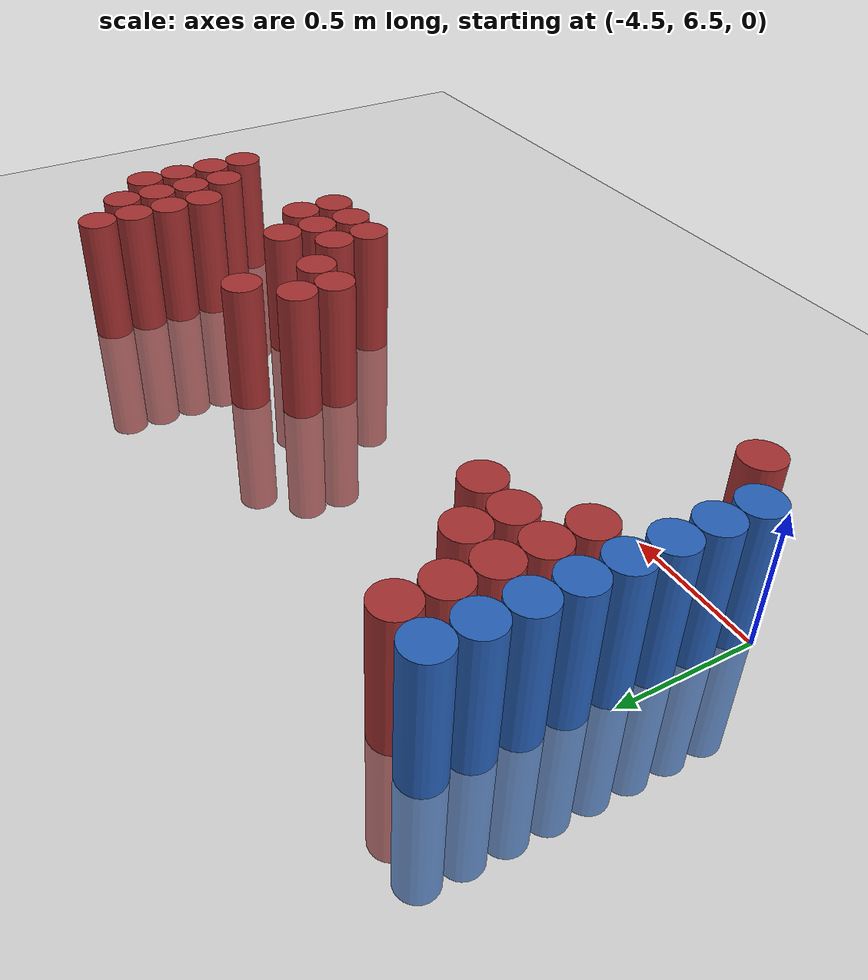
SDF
<sdf version="1.6">
 <world name="default">
  <model name="ground_plane">
   <static>1</static>
   <link name="link">
    <collision name="collision">
     <geometry><plane><normal>0 0 1</normal><size>100 100</size></plane></geometry>
     <surface><friction><ode><mu>100</mu><mu2>50</mu2></ode></friction></surface>
    </collision>
    <visual name="visual">
     <cast_shadows>0</cast_shadows>
     <geometry><plane><normal>0 0 1</normal><size>100 100</size></plane></geometry>
     <material>
      <script><uri>file://media/materials/scripts/gazebo.material</uri><name>Gazebo/Grey</name></script>
     </material>
    </visual>
   </link>
  </model>
  <model name="unit_cylinder_105">
   <static>1</static>
   <pose>-4.425000 6.525000 0.000000 0.000000 0.000000 0.000000</pose>
   <link name="link">
    <inertial>
     <mass>1</mass>
     <inertia><ixx>0.145833</ixx><ixy>0</ixy><ixz>0</ixz><iyy>0.145833</iyy><iyz>0</iyz><izz>0.125</izz></inertia>
    </inertial>
    <collision name="collision">
     <geometry><cylinder><radius>0.075000</radius><length>1</length></cylinder></geometry>
    </collision>
    <visual name="visual">
     <geometry><cylinder><radius>0.075000</radius><length>1</length></cylinder></geometry>
     <material>
      <ambient>0.152000 0.379000 0.720000 1</ambient>
      <diffuse>0.152000 0.379000 0.720000 1</diffuse>
     </material>
     <material>
      <script><name>Gazebo/Grey</name><uri>file://media/materials/scripts/gazebo.material</uri></script>
     </material>
    </visual>
    <sensor name="sensor_contact" type="contact"><contact><collision>collision</collision></contact></sensor>
   </link>
   <plugin filename="gz-sim-touchplugin-system" name="gz::sim::systems::TouchPlugin">
    <target>robot</target>
    <namespace>robot</namespace>
    <time>0.001</time>
    <enabled>true</enabled>
   </plugin>
  </model>
  <model name="unit_cylinder_106">
   <static>1</static>
   <pose>-4.425000 6.675000 0.000000 0.000000 0.000000 0.000000</pose>
   <link name="link">
    <inertial>
     <mass>1</mass>
     <inertia><ixx>0.145833</ixx><ixy>0</ixy><ixz>0</ixz><iyy>0.145833</iyy><iyz>0</iyz><izz>0.125</izz></inertia>
    </inertial>
    <collision name="collision">
     <geometry><cylinder><radius>0.075000</radius><length>1</length></cylinder></geometry>
    </collision>
    <visual name="visual">
     <geometry><cylinder><radius>0.075000</radius><length>1</length></cylinder></geometry>
     <material>
      <ambient>0.152000 0.379000 0.720000 1</ambient>
      <diffuse>0.152000 0.379000 0.720000 1</diffuse>
     </material>
     <material>
      <script><name>Gazebo/Grey</name><uri>file://media/materials/scripts/gazebo.material</uri></script>
     </material>
    </visual>
    <sensor name="sensor_contact" type="contact"><contact><collision>collision</collision></contact></sensor>
   </link>
   <plugin filename="gz-sim-touchplugin-system" name="gz::sim::systems::TouchPlugin">
    <target>robot</target>
    <namespace>robot</namespace>
    <time>0.001</time>
    <enabled>true</enabled>
   </plugin>
  </model>
  <model name="unit_cylinder_107">
   <static>1</static>
   <pose>-4.425000 6.825000 0.000000 0.000000 0.000000 0.000000</pose>
   <link name="link">
    <inertial>
     <mass>1</mass>
     <inertia><ixx>0.145833</ixx><ixy>0</ixy><ixz>0</ixz><iyy>0.145833</iyy><iyz>0</iyz><izz>0.125</izz></inertia>
    </inertial>
    <collision name="collision">
     <geometry><cylinder><radius>0.075000</radius><length>1</length></cylinder></geometry>
    </collision>
    <visual name="visual">
     <geometry><cylinder><radius>0.075000</radius><length>1</length></cylinder></geometry>
     <material>
      <ambient>0.152000 0.379000 0.720000 1</ambient>
      <diffuse>0.152000 0.379000 0.720000 1</diffuse>
     </material>
     <material>
      <script><name>Gazebo/Grey</name><uri>file://media/materials/scripts/gazebo.material</uri></script>
     </material>
    </visual>
    <sensor name="sensor_contact" type="contact"><contact><collision>collision</collision></contact></sensor>
   </link>
   <plugin filename="gz-sim-touchplugin-system" name="gz::sim::systems::TouchPlugin">
    <target>robot</target>
    <namespace>robot</namespace>
    <time>0.001</time>
    <enabled>true</enabled>
   </plugin>
  </model>
  <model name="unit_cylinder_108">
   <static>1</static>
   <pose>-4.425000 6.975000 0.000000 0.000000 0.000000 0.000000</pose>
   <link name="link">
    <inertial>
     <mass>1</mass>
     <inertia><ixx>0.145833</ixx><ixy>0</ixy><ixz>0</ixz><iyy>0.145833</iyy><iyz>0</iyz><izz>0.125</izz></inertia>
    </inertial>
    <collision name="collision">
     <geometry><cylinder><radius>0.075000</radius><length>1</length></cylinder></geometry>
    </collision>
    <visual name="visual">
     <geometry><cylinder><radius>0.075000</radius><length>1</length></cylinder></geometry>
     <material>
      <ambient>0.152000 0.379000 0.720000 1</ambient>
      <diffuse>0.152000 0.379000 0.720000 1</diffuse>
     </material>
     <material>
      <script><name>Gazebo/Grey</name><uri>file://media/materials/scripts/gazebo.material</uri></script>
     </material>
    </visual>
    <sensor name="sensor_contact" type="contact"><contact><collision>collision</collision></contact></sensor>
   </link>
   <plugin filename="gz-sim-touchplugin-system" name="gz::sim::systems::TouchPlugin">
    <target>robot</target>
    <namespace>robot</namespace>
    <time>0.001</time>
    <enabled>true</enabled>
   </plugin>
  </model>
  <model name="unit_cylinder_109">
   <static>1</static>
   <pose>-4.425000 7.125000 0.000000 0.000000 0.000000 0.000000</pose>
   <link name="link">
    <inertial>
     <mass>1</mass>
     <inertia><ixx>0.145833</ixx><ixy>0</ixy><ixz>0</ixz><iyy>0.145833</iyy><iyz>0</iyz><izz>0.125</izz></inertia>
    </inertial>
    <collision name="collision">
     <geometry><cylinder><radius>0.075000</radius><length>1</length></cylinder></geometry>
    </collision>
    <visual name="visual">
     <geometry><cylinder><radius>0.075000</radius><length>1</length></cylinder></geometry>
     <material>
      <ambient>0.152000 0.379000 0.720000 1</ambient>
      <diffuse>0.152000 0.379000 0.720000 1</diffuse>
     </material>
     <material>
      <script><name>Gazebo/Grey</name><uri>file://media/materials/scripts/gazebo.material</uri></script>
     </material>
    </visual>
    <sensor name="sensor_contact" type="contact"><contact><collision>collision</collision></contact></sensor>
   </link>
   <plugin filename="gz-sim-touchplugin-system" name="gz::sim::systems::TouchPlugin">
    <target>robot</target>
    <namespace>robot</namespace>
    <time>0.001</time>
    <enabled>true</enabled>
   </plugin>
  </model>
  <model name="unit_cylinder_110">
   <static>1</static>
   <pose>-4.425000 7.275000 0.000000 0.000000 0.000000 0.000000</pose>
   <link name="link">
    <inertial>
     <mass>1</mass>
     <inertia><ixx>0.145833</ixx><ixy>0</ixy><ixz>0</ixz><iyy>0.145833</iyy><iyz>0</iyz><izz>0.125</izz></inertia>
    </inertial>
    <collision name="collision">
     <geometry><cylinder><radius>0.075000</radius><length>1</length></cylinder></geometry>
    </collision>
    <visual name="visual">
     <geometry><cylinder><radius>0.075000</radius><length>1</length></cylinder></geometry>
     <material>
      <ambient>0.152000 0.379000 0.720000 1</ambient>
      <diffuse>0.152000 0.379000 0.720000 1</diffuse>
     </material>
     <material>
      <script><name>Gazebo/Grey</name><uri>file://media/materials/scripts/gazebo.material</uri></script>
     </material>
    </visual>
    <sensor name="sensor_contact" type="contact"><contact><collision>collision</collision></contact></sensor>
   </link>
   <plugin filename="gz-sim-touchplugin-system" name="gz::sim::systems::TouchPlugin">
    <target>robot</target>
    <namespace>robot</namespace>
    <time>0.001</time>
    <enabled>true</enabled>
   </plugin>
  </model>
  <model name="unit_cylinder_111">
   <static>1</static>
   <pose>-4.425000 7.425000 0.000000 0.000000 0.000000 0.000000</pose>
   <link name="link">
    <inertial>
     <mass>1</mass>
     <inertia><ixx>0.145833</ixx><ixy>0</ixy><ixz>0</ixz><iyy>0.145833</iyy><iyz>0</iyz><izz>0.125</izz></inertia>
    </inertial>
    <collision name="collision">
     <geometry><cylinder><radius>0.075000</radius><length>1</length></cylinder></geometry>
    </collision>
    <visual name="visual">
     <geometry><cylinder><radius>0.075000</radius><length>1</length></cylinder></geometry>
     <material>
      <ambient>0.152000 0.379000 0.720000 1</ambient>
      <diffuse>0.152000 0.379000 0.720000 1</diffuse>
     </material>
     <material>
      <script><name>Gazebo/Grey</name><uri>file://media/materials/scripts/gazebo.material</uri></script>
     </material>
    </visual>
    <sensor name="sensor_contact" type="contact"><contact><collision>collision</collision></contact></sensor>
   </link>
   <plugin filename="gz-sim-touchplugin-system" name="gz::sim::systems::TouchPlugin">
    <target>robot</target>
    <namespace>robot</namespace>
    <time>0.001</time>
    <enabled>true</enabled>
   </plugin>
  </model>
  <model name="unit_cylinder_112">
   <static>1</static>
   <pose>-4.425000 7.575000 0.000000 0.000000 0.000000 0.000000</pose>
   <link name="link">
    <inertial>
     <mass>1</mass>
     <inertia><ixx>0.145833</ixx><ixy>0</ixy><ixz>0</ixz><iyy>0.145833</iyy><iyz>0</iyz><izz>0.125</izz></inertia>
    </inertial>
    <collision name="collision">
     <geometry><cylinder><radius>0.075000</radius><length>1</length></cylinder></geometry>
    </collision>
    <visual name="visual">
     <geometry><cylinder><radius>0.075000</radius><length>1</length></cylinder></geometry>
     <material>
      <ambient>0.152000 0.379000 0.720000 1</ambient>
      <diffuse>0.152000 0.379000 0.720000 1</diffuse>
     </material>
     <material>
      <script><name>Gazebo/Grey</name><uri>file://media/materials/scripts/gazebo.material</uri></script>
     </material>
    </visual>
    <sensor name="sensor_contact" type="contact"><contact><collision>collision</collision></contact></sensor>
   </link>
   <plugin filename="gz-sim-touchplugin-system" name="gz::sim::systems::TouchPlugin">
    <target>robot</target>
    <namespace>robot</namespace>
    <time>0.001</time>
    <enabled>true</enabled>
   </plugin>
  </model>
  <model name="unit_cylinder_130">
   <static>1</static>
   <pose>-4.275000 6.375000 0.000000 0.000000 0.000000 0.000000</pose>
   <link name="link">
    <inertial>
     <mass>1</mass>
     <inertia><ixx>0.145833</ixx><ixy>0</ixy><ixz>0</ixz><iyy>0.145833</iyy><iyz>0</iyz><izz>0.125</izz></inertia>
    </inertial>
    <collision name="collision">
     <geometry><cylinder><radius>0.075000</radius><length>1</length></cylinder></geometry>
    </collision>
    <visual name="visual">
     <geometry><cylinder><radius>0.075000</radius><length>1</length></cylinder></geometry>
     <material>
      <ambient>0.648000 0.192000 0.192000 1</ambient>
      <diffuse>0.648000 0.192000 0.192000 1</diffuse>
     </material>
     <material>
      <script><name>Gazebo/Grey</name><uri>file://media/materials/scripts/gazebo.material</uri></script>
     </material>
    </visual>
    <sensor name="sensor_contact" type="contact"><contact><collision>collision</collision></contact></sensor>
   </link>
   <plugin filename="gz-sim-touchplugin-system" name="gz::sim::systems::TouchPlugin">
    <target>robot</target>
    <namespace>robot</namespace>
    <time>0.001</time>
    <enabled>true</enabled>
   </plugin>
  </model>
  <model name="unit_cylinder_131">
   <static>1</static>
   <pose>-4.275000 6.975000 0.000000 0.000000 0.000000 0.000000</pose>
   <link name="link">
    <inertial>
     <mass>1</mass>
     <inertia><ixx>0.145833</ixx><ixy>0</ixy><ixz>0</ixz><iyy>0.145833</iyy><iyz>0</iyz><izz>0.125</izz></inertia>
    </inertial>
    <collision name="collision">
     <geometry><cylinder><radius>0.075000</radius><length>1</length></cylinder></geometry>
    </collision>
    <visual name="visual">
     <geometry><cylinder><radius>0.075000</radius><length>1</length></cylinder></geometry>
     <material>
      <ambient>0.648000 0.192000 0.192000 1</ambient>
      <diffuse>0.648000 0.192000 0.192000 1</diffuse>
     </material>
     <material>
      <script><name>Gazebo/Grey</name><uri>file://media/materials/scripts/gazebo.material</uri></script>
     </material>
    </visual>
    <sensor name="sensor_contact" type="contact"><contact><collision>collision</collision></contact></sensor>
   </link>
   <plugin filename="gz-sim-touchplugin-system" name="gz::sim::systems::TouchPlugin">
    <target>robot</target>
    <namespace>robot</namespace>
    <time>0.001</time>
    <enabled>true</enabled>
   </plugin>
  </model>
  <model name="unit_cylinder_132">
   <static>1</static>
   <pose>-4.275000 7.125000 0.000000 0.000000 0.000000 0.000000</pose>
   <link name="link">
    <inertial>
     <mass>1</mass>
     <inertia><ixx>0.145833</ixx><ixy>0</ixy><ixz>0</ixz><iyy>0.145833</iyy><iyz>0</iyz><izz>0.125</izz></inertia>
    </inertial>
    <collision name="collision">
     <geometry><cylinder><radius>0.075000</radius><length>1</length></cylinder></geometry>
    </collision>
    <visual name="visual">
     <geometry><cylinder><radius>0.075000</radius><length>1</length></cylinder></geometry>
     <material>
      <ambient>0.648000 0.192000 0.192000 1</ambient>
      <diffuse>0.648000 0.192000 0.192000 1</diffuse>
     </material>
     <material>
      <script><name>Gazebo/Grey</name><uri>file://media/materials/scripts/gazebo.material</uri></script>
     </material>
    </visual>
    <sensor name="sensor_contact" type="contact"><contact><collision>collision</collision></contact></sensor>
   </link>
   <plugin filename="gz-sim-touchplugin-system" name="gz::sim::systems::TouchPlugin">
    <target>robot</target>
    <namespace>robot</namespace>
    <time>0.001</time>
    <enabled>true</enabled>
   </plugin>
  </model>
  <model name="unit_cylinder_133">
   <static>1</static>
   <pose>-4.275000 7.275000 0.000000 0.000000 0.000000 0.000000</pose>
   <link name="link">
    <inertial>
     <mass>1</mass>
     <inertia><ixx>0.145833</ixx><ixy>0</ixy><ixz>0</ixz><iyy>0.145833</iyy><iyz>0</iyz><izz>0.125</izz></inertia>
    </inertial>
    <collision name="collision">
     <geometry><cylinder><radius>0.075000</radius><length>1</length></cylinder></geometry>
    </collision>
    <visual name="visual">
     <geometry><cylinder><radius>0.075000</radius><length>1</length></cylinder></geometry>
     <material>
      <ambient>0.648000 0.192000 0.192000 1</ambient>
      <diffuse>0.648000 0.192000 0.192000 1</diffuse>
     </material>
     <material>
      <script><name>Gazebo/Grey</name><uri>file://media/materials/scripts/gazebo.material</uri></script>
     </material>
    </visual>
    <sensor name="sensor_contact" type="contact"><contact><collision>collision</collision></contact></sensor>
   </link>
   <plugin filename="gz-sim-touchplugin-system" name="gz::sim::systems::TouchPlugin">
    <target>robot</target>
    <namespace>robot</namespace>
    <time>0.001</time>
    <enabled>true</enabled>
   </plugin>
  </model>
  <model name="unit_cylinder_134">
   <static>1</static>
   <pose>-4.275000 7.425000 0.000000 0.000000 0.000000 0.000000</pose>
   <link name="link">
    <inertial>
     <mass>1</mass>
     <inertia><ixx>0.145833</ixx><ixy>0</ixy><ixz>0</ixz><iyy>0.145833</iyy><iyz>0</iyz><izz>0.125</izz></inertia>
    </inertial>
    <collision name="collision">
     <geometry><cylinder><radius>0.075000</radius><length>1</length></cylinder></geometry>
    </collision>
    <visual name="visual">
     <geometry><cylinder><radius>0.075000</radius><length>1</length></cylinder></geometry>
     <material>
      <ambient>0.648000 0.192000 0.192000 1</ambient>
      <diffuse>0.648000 0.192000 0.192000 1</diffuse>
     </material>
     <material>
      <script><name>Gazebo/Grey</name><uri>file://media/materials/scripts/gazebo.material</uri></script>
     </material>
    </visual>
    <sensor name="sensor_contact" type="contact"><contact><collision>collision</collision></contact></sensor>
   </link>
   <plugin filename="gz-sim-touchplugin-system" name="gz::sim::systems::TouchPlugin">
    <target>robot</target>
    <namespace>robot</namespace>
    <time>0.001</time>
    <enabled>true</enabled>
   </plugin>
  </model>
  <model name="unit_cylinder_135">
   <static>1</static>
   <pose>-4.275000 7.575000 0.000000 0.000000 0.000000 0.000000</pose>
   <link name="link">
    <inertial>
     <mass>1</mass>
     <inertia><ixx>0.145833</ixx><ixy>0</ixy><ixz>0</ixz><iyy>0.145833</iyy><iyz>0</iyz><izz>0.125</izz></inertia>
    </inertial>
    <collision name="collision">
     <geometry><cylinder><radius>0.075000</radius><length>1</length></cylinder></geometry>
    </collision>
    <visual name="visual">
     <geometry><cylinder><radius>0.075000</radius><length>1</length></cylinder></geometry>
     <material>
      <ambient>0.648000 0.192000 0.192000 1</ambient>
      <diffuse>0.648000 0.192000 0.192000 1</diffuse>
     </material>
     <material>
      <script><name>Gazebo/Grey</name><uri>file://media/materials/scripts/gazebo.material</uri></script>
     </material>
    </visual>
    <sensor name="sensor_contact" type="contact"><contact><collision>collision</collision></contact></sensor>
   </link>
   <plugin filename="gz-sim-touchplugin-system" name="gz::sim::systems::TouchPlugin">
    <target>robot</target>
    <namespace>robot</namespace>
    <time>0.001</time>
    <enabled>true</enabled>
   </plugin>
  </model>
  <model name="unit_cylinder_142">
   <static>1</static>
   <pose>-4.125000 7.125000 0.000000 0.000000 0.000000 0.000000</pose>
   <link name="link">
    <inertial>
     <mass>1</mass>
     <inertia><ixx>0.145833</ixx><ixy>0</ixy><ixz>0</ixz><iyy>0.145833</iyy><iyz>0</iyz><izz>0.125</izz></inertia>
    </inertial>
    <collision name="collision">
     <geometry><cylinder><radius>0.075000</radius><length>1</length></cylinder></geometry>
    </collision>
    <visual name="visual">
     <geometry><cylinder><radius>0.075000</radius><length>1</length></cylinder></geometry>
     <material>
      <ambient>0.648000 0.192000 0.192000 1</ambient>
      <diffuse>0.648000 0.192000 0.192000 1</diffuse>
     </material>
     <material>
      <script><name>Gazebo/Grey</name><uri>file://media/materials/scripts/gazebo.material</uri></script>
     </material>
    </visual>
    <sensor name="sensor_contact" type="contact"><contact><collision>collision</collision></contact></sensor>
   </link>
   <plugin filename="gz-sim-touchplugin-system" name="gz::sim::systems::TouchPlugin">
    <target>robot</target>
    <namespace>robot</namespace>
    <time>0.001</time>
    <enabled>true</enabled>
   </plugin>
  </model>
  <model name="unit_cylinder_143">
   <static>1</static>
   <pose>-4.125000 7.275000 0.000000 0.000000 0.000000 0.000000</pose>
   <link name="link">
    <inertial>
     <mass>1</mass>
     <inertia><ixx>0.145833</ixx><ixy>0</ixy><ixz>0</ixz><iyy>0.145833</iyy><iyz>0</iyz><izz>0.125</izz></inertia>
    </inertial>
    <collision name="collision">
     <geometry><cylinder><radius>0.075000</radius><length>1</length></cylinder></geometry>
    </collision>
    <visual name="visual">
     <geometry><cylinder><radius>0.075000</radius><length>1</length></cylinder></geometry>
     <material>
      <ambient>0.648000 0.192000 0.192000 1</ambient>
      <diffuse>0.648000 0.192000 0.192000 1</diffuse>
     </material>
     <material>
      <script><name>Gazebo/Grey</name><uri>file://media/materials/scripts/gazebo.material</uri></script>
     </material>
    </visual>
    <sensor name="sensor_contact" type="contact"><contact><collision>collision</collision></contact></sensor>
   </link>
   <plugin filename="gz-sim-touchplugin-system" name="gz::sim::systems::TouchPlugin">
    <target>robot</target>
    <namespace>robot</namespace>
    <time>0.001</time>
    <enabled>true</enabled>
   </plugin>
  </model>
  <model name="unit_cylinder_148">
   <static>1</static>
   <pose>-3.975000 7.125000 0.000000 0.000000 0.000000 0.000000</pose>
   <link name="link">
    <inertial>
     <mass>1</mass>
     <inertia><ixx>0.145833</ixx><ixy>0</ixy><ixz>0</ixz><iyy>0.145833</iyy><iyz>0</iyz><izz>0.125</izz></inertia>
    </inertial>
    <collision name="collision">
     <geometry><cylinder><radius>0.075000</radius><length>1</length></cylinder></geometry>
    </collision>
    <visual name="visual">
     <geometry><cylinder><radius>0.075000</radius><length>1</length></cylinder></geometry>
     <material>
      <ambient>0.648000 0.192000 0.192000 1</ambient>
      <diffuse>0.648000 0.192000 0.192000 1</diffuse>
     </material>
     <material>
      <script><name>Gazebo/Grey</name><uri>file://media/materials/scripts/gazebo.material</uri></script>
     </material>
    </visual>
    <sensor name="sensor_contact" type="contact"><contact><collision>collision</collision></contact></sensor>
   </link>
   <plugin filename="gz-sim-touchplugin-system" name="gz::sim::systems::TouchPlugin">
    <target>robot</target>
    <namespace>robot</namespace>
    <time>0.001</time>
    <enabled>true</enabled>
   </plugin>
  </model>
  <model name="unit_cylinder_162">
   <static>1</static>
   <pose>-2.775000 6.975000 0.000000 0.000000 0.000000 0.000000</pose>
   <link name="link">
    <inertial>
     <mass>1</mass>
     <inertia><ixx>0.145833</ixx><ixy>0</ixy><ixz>0</ixz><iyy>0.145833</iyy><iyz>0</iyz><izz>0.125</izz></inertia>
    </inertial>
    <collision name="collision">
     <geometry><cylinder><radius>0.075000</radius><length>1</length></cylinder></geometry>
    </collision>
    <visual name="visual">
     <geometry><cylinder><radius>0.075000</radius><length>1</length></cylinder></geometry>
     <material>
      <ambient>0.648000 0.192000 0.192000 1</ambient>
      <diffuse>0.648000 0.192000 0.192000 1</diffuse>
     </material>
     <material>
      <script><name>Gazebo/Grey</name><uri>file://media/materials/scripts/gazebo.material</uri></script>
     </material>
    </visual>
    <sensor name="sensor_contact" type="contact"><contact><collision>collision</collision></contact></sensor>
   </link>
   <plugin filename="gz-sim-touchplugin-system" name="gz::sim::systems::TouchPlugin">
    <target>robot</target>
    <namespace>robot</namespace>
    <time>0.001</time>
    <enabled>true</enabled>
   </plugin>
  </model>
  <model name="unit_cylinder_163">
   <static>1</static>
   <pose>-2.775000 7.125000 0.000000 0.000000 0.000000 0.000000</pose>
   <link name="link">
    <inertial>
     <mass>1</mass>
     <inertia><ixx>0.145833</ixx><ixy>0</ixy><ixz>0</ixz><iyy>0.145833</iyy><iyz>0</iyz><izz>0.125</izz></inertia>
    </inertial>
    <collision name="collision">
     <geometry><cylinder><radius>0.075000</radius><length>1</length></cylinder></geometry>
    </collision>
    <visual name="visual">
     <geometry><cylinder><radius>0.075000</radius><length>1</length></cylinder></geometry>
     <material>
      <ambient>0.648000 0.192000 0.192000 1</ambient>
      <diffuse>0.648000 0.192000 0.192000 1</diffuse>
     </material>
     <material>
      <script><name>Gazebo/Grey</name><uri>file://media/materials/scripts/gazebo.material</uri></script>
     </material>
    </visual>
    <sensor name="sensor_contact" type="contact"><contact><collision>collision</collision></contact></sensor>
   </link>
   <plugin filename="gz-sim-touchplugin-system" name="gz::sim::systems::TouchPlugin">
    <target>robot</target>
    <namespace>robot</namespace>
    <time>0.001</time>
    <enabled>true</enabled>
   </plugin>
  </model>
  <model name="unit_cylinder_167">
   <static>1</static>
   <pose>-2.625000 6.975000 0.000000 0.000000 0.000000 0.000000</pose>
   <link name="link">
    <inertial>
     <mass>1</mass>
     <inertia><ixx>0.145833</ixx><ixy>0</ixy><ixz>0</ixz><iyy>0.145833</iyy><iyz>0</iyz><izz>0.125</izz></inertia>
    </inertial>
    <collision name="collision">
     <geometry><cylinder><radius>0.075000</radius><length>1</length></cylinder></geometry>
    </collision>
    <visual name="visual">
     <geometry><cylinder><radius>0.075000</radius><length>1</length></cylinder></geometry>
     <material>
      <ambient>0.648000 0.192000 0.192000 1</ambient>
      <diffuse>0.648000 0.192000 0.192000 1</diffuse>
     </material>
     <material>
      <script><name>Gazebo/Grey</name><uri>file://media/materials/scripts/gazebo.material</uri></script>
     </material>
    </visual>
    <sensor name="sensor_contact" type="contact"><contact><collision>collision</collision></contact></sensor>
   </link>
   <plugin filename="gz-sim-touchplugin-system" name="gz::sim::systems::TouchPlugin">
    <target>robot</target>
    <namespace>robot</namespace>
    <time>0.001</time>
    <enabled>true</enabled>
   </plugin>
  </model>
  <model name="unit_cylinder_168">
   <static>1</static>
   <pose>-2.625000 7.275000 0.000000 0.000000 0.000000 0.000000</pose>
   <link name="link">
    <inertial>
     <mass>1</mass>
     <inertia><ixx>0.145833</ixx><ixy>0</ixy><ixz>0</ixz><iyy>0.145833</iyy><iyz>0</iyz><izz>0.125</izz></inertia>
    </inertial>
    <collision name="collision">
     <geometry><cylinder><radius>0.075000</radius><length>1</length></cylinder></geometry>
    </collision>
    <visual name="visual">
     <geometry><cylinder><radius>0.075000</radius><length>1</length></cylinder></geometry>
     <material>
      <ambient>0.648000 0.192000 0.192000 1</ambient>
      <diffuse>0.648000 0.192000 0.192000 1</diffuse>
     </material>
     <material>
      <script><name>Gazebo/Grey</name><uri>file://media/materials/scripts/gazebo.material</uri></script>
     </material>
    </visual>
    <sensor name="sensor_contact" type="contact"><contact><collision>collision</collision></contact></sensor>
   </link>
   <plugin filename="gz-sim-touchplugin-system" name="gz::sim::systems::TouchPlugin">
    <target>robot</target>
    <namespace>robot</namespace>
    <time>0.001</time>
    <enabled>true</enabled>
   </plugin>
  </model>
  <model name="unit_cylinder_174">
   <static>1</static>
   <pose>-2.475000 6.675000 0.000000 0.000000 0.000000 0.000000</pose>
   <link name="link">
    <inertial>
     <mass>1</mass>
     <inertia><ixx>0.145833</ixx><ixy>0</ixy><ixz>0</ixz><iyy>0.145833</iyy><iyz>0</iyz><izz>0.125</izz></inertia>
    </inertial>
    <collision name="collision">
     <geometry><cylinder><radius>0.075000</radius><length>1</length></cylinder></geometry>
    </collision>
    <visual name="visual">
     <geometry><cylinder><radius>0.075000</radius><length>1</length></cylinder></geometry>
     <material>
      <ambient>0.648000 0.192000 0.192000 1</ambient>
      <diffuse>0.648000 0.192000 0.192000 1</diffuse>
     </material>
     <material>
      <script><name>Gazebo/Grey</name><uri>file://media/materials/scripts/gazebo.material</uri></script>
     </material>
    </visual>
    <sensor name="sensor_contact" type="contact"><contact><collision>collision</collision></contact></sensor>
   </link>
   <plugin filename="gz-sim-touchplugin-system" name="gz::sim::systems::TouchPlugin">
    <target>robot</target>
    <namespace>robot</namespace>
    <time>0.001</time>
    <enabled>true</enabled>
   </plugin>
  </model>
  <model name="unit_cylinder_175">
   <static>1</static>
   <pose>-2.475000 6.825000 0.000000 0.000000 0.000000 0.000000</pose>
   <link name="link">
    <inertial>
     <mass>1</mass>
     <inertia><ixx>0.145833</ixx><ixy>0</ixy><ixz>0</ixz><iyy>0.145833</iyy><iyz>0</iyz><izz>0.125</izz></inertia>
    </inertial>
    <collision name="collision">
     <geometry><cylinder><radius>0.075000</radius><length>1</length></cylinder></geometry>
    </collision>
    <visual name="visual">
     <geometry><cylinder><radius>0.075000</radius><length>1</length></cylinder></geometry>
     <material>
      <ambient>0.648000 0.192000 0.192000 1</ambient>
      <diffuse>0.648000 0.192000 0.192000 1</diffuse>
     </material>
     <material>
      <script><name>Gazebo/Grey</name><uri>file://media/materials/scripts/gazebo.material</uri></script>
     </material>
    </visual>
    <sensor name="sensor_contact" type="contact"><contact><collision>collision</collision></contact></sensor>
   </link>
   <plugin filename="gz-sim-touchplugin-system" name="gz::sim::systems::TouchPlugin">
    <target>robot</target>
    <namespace>robot</namespace>
    <time>0.001</time>
    <enabled>true</enabled>
   </plugin>
  </model>
  <model name="unit_cylinder_181">
   <static>1</static>
   <pose>-2.325000 6.675000 0.000000 0.000000 0.000000 0.000000</pose>
   <link name="link">
    <inertial>
     <mass>1</mass>
     <inertia><ixx>0.145833</ixx><ixy>0</ixy><ixz>0</ixz><iyy>0.145833</iyy><iyz>0</iyz><izz>0.125</izz></inertia>
    </inertial>
    <collision name="collision">
     <geometry><cylinder><radius>0.075000</radius><length>1</length></cylinder></geometry>
    </collision>
    <visual name="visual">
     <geometry><cylinder><radius>0.075000</radius><length>1</length></cylinder></geometry>
     <material>
      <ambient>0.648000 0.192000 0.192000 1</ambient>
      <diffuse>0.648000 0.192000 0.192000 1</diffuse>
     </material>
     <material>
      <script><name>Gazebo/Grey</name><uri>file://media/materials/scripts/gazebo.material</uri></script>
     </material>
    </visual>
    <sensor name="sensor_contact" type="contact"><contact><collision>collision</collision></contact></sensor>
   </link>
   <plugin filename="gz-sim-touchplugin-system" name="gz::sim::systems::TouchPlugin">
    <target>robot</target>
    <namespace>robot</namespace>
    <time>0.001</time>
    <enabled>true</enabled>
   </plugin>
  </model>
  <model name="unit_cylinder_182">
   <static>1</static>
   <pose>-2.325000 6.825000 0.000000 0.000000 0.000000 0.000000</pose>
   <link name="link">
    <inertial>
     <mass>1</mass>
     <inertia><ixx>0.145833</ixx><ixy>0</ixy><ixz>0</ixz><iyy>0.145833</iyy><iyz>0</iyz><izz>0.125</izz></inertia>
    </inertial>
    <collision name="collision">
     <geometry><cylinder><radius>0.075000</radius><length>1</length></cylinder></geometry>
    </collision>
    <visual name="visual">
     <geometry><cylinder><radius>0.075000</radius><length>1</length></cylinder></geometry>
     <material>
      <ambient>0.648000 0.192000 0.192000 1</ambient>
      <diffuse>0.648000 0.192000 0.192000 1</diffuse>
     </material>
     <material>
      <script><name>Gazebo/Grey</name><uri>file://media/materials/scripts/gazebo.material</uri></script>
     </material>
    </visual>
    <sensor name="sensor_contact" type="contact"><contact><collision>collision</collision></contact></sensor>
   </link>
   <plugin filename="gz-sim-touchplugin-system" name="gz::sim::systems::TouchPlugin">
    <target>robot</target>
    <namespace>robot</namespace>
    <time>0.001</time>
    <enabled>true</enabled>
   </plugin>
  </model>
  <model name="unit_cylinder_183">
   <static>1</static>
   <pose>-2.325000 6.975000 0.000000 0.000000 0.000000 0.000000</pose>
   <link name="link">
    <inertial>
     <mass>1</mass>
     <inertia><ixx>0.145833</ixx><ixy>0</ixy><ixz>0</ixz><iyy>0.145833</iyy><iyz>0</iyz><izz>0.125</izz></inertia>
    </inertial>
    <collision name="collision">
     <geometry><cylinder><radius>0.075000</radius><length>1</length></cylinder></geometry>
    </collision>
    <visual name="visual">
     <geometry><cylinder><radius>0.075000</radius><length>1</length></cylinder></geometry>
     <material>
      <ambient>0.648000 0.192000 0.192000 1</ambient>
      <diffuse>0.648000 0.192000 0.192000 1</diffuse>
     </material>
     <material>
      <script><name>Gazebo/Grey</name><uri>file://media/materials/scripts/gazebo.material</uri></script>
     </material>
    </visual>
    <sensor name="sensor_contact" type="contact"><contact><collision>collision</collision></contact></sensor>
   </link>
   <plugin filename="gz-sim-touchplugin-system" name="gz::sim::systems::TouchPlugin">
    <target>robot</target>
    <namespace>robot</namespace>
    <time>0.001</time>
    <enabled>true</enabled>
   </plugin>
  </model>
  <model name="unit_cylinder_185">
   <static>1</static>
   <pose>-2.175000 6.675000 0.000000 0.000000 0.000000 0.000000</pose>
   <link name="link">
    <inertial>
     <mass>1</mass>
     <inertia><ixx>0.145833</ixx><ixy>0</ixy><ixz>0</ixz><iyy>0.145833</iyy><iyz>0</iyz><izz>0.125</izz></inertia>
    </inertial>
    <collision name="collision">
     <geometry><cylinder><radius>0.075000</radius><length>1</length></cylinder></geometry>
    </collision>
    <visual name="visual">
     <geometry><cylinder><radius>0.075000</radius><length>1</length></cylinder></geometry>
     <material>
      <ambient>0.648000 0.192000 0.192000 1</ambient>
      <diffuse>0.648000 0.192000 0.192000 1</diffuse>
     </material>
     <material>
      <script><name>Gazebo/Grey</name><uri>file://media/materials/scripts/gazebo.material</uri></script>
     </material>
    </visual>
    <sensor name="sensor_contact" type="contact"><contact><collision>collision</collision></contact></sensor>
   </link>
   <plugin filename="gz-sim-touchplugin-system" name="gz::sim::systems::TouchPlugin">
    <target>robot</target>
    <namespace>robot</namespace>
    <time>0.001</time>
    <enabled>true</enabled>
   </plugin>
  </model>
  <model name="unit_cylinder_186">
   <static>1</static>
   <pose>-2.175000 6.825000 0.000000 0.000000 0.000000 0.000000</pose>
   <link name="link">
    <inertial>
     <mass>1</mass>
     <inertia><ixx>0.145833</ixx><ixy>0</ixy><ixz>0</ixz><iyy>0.145833</iyy><iyz>0</iyz><izz>0.125</izz></inertia>
    </inertial>
    <collision name="collision">
     <geometry><cylinder><radius>0.075000</radius><length>1</length></cylinder></geometry>
    </collision>
    <visual name="visual">
     <geometry><cylinder><radius>0.075000</radius><length>1</length></cylinder></geometry>
     <material>
      <ambient>0.648000 0.192000 0.192000 1</ambient>
      <diffuse>0.648000 0.192000 0.192000 1</diffuse>
     </material>
     <material>
      <script><name>Gazebo/Grey</name><uri>file://media/materials/scripts/gazebo.material</uri></script>
     </material>
    </visual>
    <sensor name="sensor_contact" type="contact"><contact><collision>collision</collision></contact></sensor>
   </link>
   <plugin filename="gz-sim-touchplugin-system" name="gz::sim::systems::TouchPlugin">
    <target>robot</target>
    <namespace>robot</namespace>
    <time>0.001</time>
    <enabled>true</enabled>
   </plugin>
  </model>
  <model name="unit_cylinder_194">
   <static>1</static>
   <pose>-1.875000 7.125000 0.000000 0.000000 0.000000 0.000000</pose>
   <link name="link">
    <inertial>
     <mass>1</mass>
     <inertia><ixx>0.145833</ixx><ixy>0</ixy><ixz>0</ixz><iyy>0.145833</iyy><iyz>0</iyz><izz>0.125</izz></inertia>
    </inertial>
    <collision name="collision">
     <geometry><cylinder><radius>0.075000</radius><length>1</length></cylinder></geometry>
    </collision>
    <visual name="visual">
     <geometry><cylinder><radius>0.075000</radius><length>1</length></cylinder></geometry>
     <material>
      <ambient>0.648000 0.192000 0.192000 1</ambient>
      <diffuse>0.648000 0.192000 0.192000 1</diffuse>
     </material>
     <material>
      <script><name>Gazebo/Grey</name><uri>file://media/materials/scripts/gazebo.material</uri></script>
     </material>
    </visual>
    <sensor name="sensor_contact" type="contact"><contact><collision>collision</collision></contact></sensor>
   </link>
   <plugin filename="gz-sim-touchplugin-system" name="gz::sim::systems::TouchPlugin">
    <target>robot</target>
    <namespace>robot</namespace>
    <time>0.001</time>
    <enabled>true</enabled>
   </plugin>
  </model>
  <model name="unit_cylinder_195">
   <static>1</static>
   <pose>-1.875000 7.275000 0.000000 0.000000 0.000000 0.000000</pose>
   <link name="link">
    <inertial>
     <mass>1</mass>
     <inertia><ixx>0.145833</ixx><ixy>0</ixy><ixz>0</ixz><iyy>0.145833</iyy><iyz>0</iyz><izz>0.125</izz></inertia>
    </inertial>
    <collision name="collision">
     <geometry><cylinder><radius>0.075000</radius><length>1</length></cylinder></geometry>
    </collision>
    <visual name="visual">
     <geometry><cylinder><radius>0.075000</radius><length>1</length></cylinder></geometry>
     <material>
      <ambient>0.648000 0.192000 0.192000 1</ambient>
      <diffuse>0.648000 0.192000 0.192000 1</diffuse>
     </material>
     <material>
      <script><name>Gazebo/Grey</name><uri>file://media/materials/scripts/gazebo.material</uri></script>
     </material>
    </visual>
    <sensor name="sensor_contact" type="contact"><contact><collision>collision</collision></contact></sensor>
   </link>
   <plugin filename="gz-sim-touchplugin-system" name="gz::sim::systems::TouchPlugin">
    <target>robot</target>
    <namespace>robot</namespace>
    <time>0.001</time>
    <enabled>true</enabled>
   </plugin>
  </model>
  <model name="unit_cylinder_196">
   <static>1</static>
   <pose>-1.875000 7.425000 0.000000 0.000000 0.000000 0.000000</pose>
   <link name="link">
    <inertial>
     <mass>1</mass>
     <inertia><ixx>0.145833</ixx><ixy>0</ixy><ixz>0</ixz><iyy>0.145833</iyy><iyz>0</iyz><izz>0.125</izz></inertia>
    </inertial>
    <collision name="collision">
     <geometry><cylinder><radius>0.075000</radius><length>1</length></cylinder></geometry>
    </collision>
    <visual name="visual">
     <geometry><cylinder><radius>0.075000</radius><length>1</length></cylinder></geometry>
     <material>
      <ambient>0.648000 0.192000 0.192000 1</ambient>
      <diffuse>0.648000 0.192000 0.192000 1</diffuse>
     </material>
     <material>
      <script><name>Gazebo/Grey</name><uri>file://media/materials/scripts/gazebo.material</uri></script>
     </material>
    </visual>
    <sensor name="sensor_contact" type="contact"><contact><collision>collision</collision></contact></sensor>
   </link>
   <plugin filename="gz-sim-touchplugin-system" name="gz::sim::systems::TouchPlugin">
    <target>robot</target>
    <namespace>robot</namespace>
    <time>0.001</time>
    <enabled>true</enabled>
   </plugin>
  </model>
  <model name="unit_cylinder_197">
   <static>1</static>
   <pose>-1.875000 7.575000 0.000000 0.000000 0.000000 0.000000</pose>
   <link name="link">
    <inertial>
     <mass>1</mass>
     <inertia><ixx>0.145833</ixx><ixy>0</ixy><ixz>0</ixz><iyy>0.145833</iyy><iyz>0</iyz><izz>0.125</izz></inertia>
    </inertial>
    <collision name="collision">
     <geometry><cylinder><radius>0.075000</radius><length>1</length></cylinder></geometry>
    </collision>
    <visual name="visual">
     <geometry><cylinder><radius>0.075000</radius><length>1</length></cylinder></geometry>
     <material>
      <ambient>0.648000 0.192000 0.192000 1</ambient>
      <diffuse>0.648000 0.192000 0.192000 1</diffuse>
     </material>
     <material>
      <script><name>Gazebo/Grey</name><uri>file://media/materials/scripts/gazebo.material</uri></script>
     </material>
    </visual>
    <sensor name="sensor_contact" type="contact"><contact><collision>collision</collision></contact></sensor>
   </link>
   <plugin filename="gz-sim-touchplugin-system" name="gz::sim::systems::TouchPlugin">
    <target>robot</target>
    <namespace>robot</namespace>
    <time>0.001</time>
    <enabled>true</enabled>
   </plugin>
  </model>
  <model name="unit_cylinder_204">
   <static>1</static>
   <pose>-1.725000 6.975000 0.000000 0.000000 0.000000 0.000000</pose>
   <link name="link">
    <inertial>
     <mass>1</mass>
     <inertia><ixx>0.145833</ixx><ixy>0</ixy><ixz>0</ixz><iyy>0.145833</iyy><iyz>0</iyz><izz>0.125</izz></inertia>
    </inertial>
    <collision name="collision">
     <geometry><cylinder><radius>0.075000</radius><length>1</length></cylinder></geometry>
    </collision>
    <visual name="visual">
     <geometry><cylinder><radius>0.075000</radius><length>1</length></cylinder></geometry>
     <material>
      <ambient>0.648000 0.192000 0.192000 1</ambient>
      <diffuse>0.648000 0.192000 0.192000 1</diffuse>
     </material>
     <material>
      <script><name>Gazebo/Grey</name><uri>file://media/materials/scripts/gazebo.material</uri></script>
     </material>
    </visual>
    <sensor name="sensor_contact" type="contact"><contact><collision>collision</collision></contact></sensor>
   </link>
   <plugin filename="gz-sim-touchplugin-system" name="gz::sim::systems::TouchPlugin">
    <target>robot</target>
    <namespace>robot</namespace>
    <time>0.001</time>
    <enabled>true</enabled>
   </plugin>
  </model>
  <model name="unit_cylinder_205">
   <static>1</static>
   <pose>-1.725000 7.125000 0.000000 0.000000 0.000000 0.000000</pose>
   <link name="link">
    <inertial>
     <mass>1</mass>
     <inertia><ixx>0.145833</ixx><ixy>0</ixy><ixz>0</ixz><iyy>0.145833</iyy><iyz>0</iyz><izz>0.125</izz></inertia>
    </inertial>
    <collision name="collision">
     <geometry><cylinder><radius>0.075000</radius><length>1</length></cylinder></geometry>
    </collision>
    <visual name="visual">
     <geometry><cylinder><radius>0.075000</radius><length>1</length></cylinder></geometry>
     <material>
      <ambient>0.648000 0.192000 0.192000 1</ambient>
      <diffuse>0.648000 0.192000 0.192000 1</diffuse>
     </material>
     <material>
      <script><name>Gazebo/Grey</name><uri>file://media/materials/scripts/gazebo.material</uri></script>
     </material>
    </visual>
    <sensor name="sensor_contact" type="contact"><contact><collision>collision</collision></contact></sensor>
   </link>
   <plugin filename="gz-sim-touchplugin-system" name="gz::sim::systems::TouchPlugin">
    <target>robot</target>
    <namespace>robot</namespace>
    <time>0.001</time>
    <enabled>true</enabled>
   </plugin>
  </model>
  <model name="unit_cylinder_206">
   <static>1</static>
   <pose>-1.725000 7.275000 0.000000 0.000000 0.000000 0.000000</pose>
   <link name="link">
    <inertial>
     <mass>1</mass>
     <inertia><ixx>0.145833</ixx><ixy>0</ixy><ixz>0</ixz><iyy>0.145833</iyy><iyz>0</iyz><izz>0.125</izz></inertia>
    </inertial>
    <collision name="collision">
     <geometry><cylinder><radius>0.075000</radius><length>1</length></cylinder></geometry>
    </collision>
    <visual name="visual">
     <geometry><cylinder><radius>0.075000</radius><length>1</length></cylinder></geometry>
     <material>
      <ambient>0.648000 0.192000 0.192000 1</ambient>
      <diffuse>0.648000 0.192000 0.192000 1</diffuse>
     </material>
     <material>
      <script><name>Gazebo/Grey</name><uri>file://media/materials/scripts/gazebo.material</uri></script>
     </material>
    </visual>
    <sensor name="sensor_contact" type="contact"><contact><collision>collision</collision></contact></sensor>
   </link>
   <plugin filename="gz-sim-touchplugin-system" name="gz::sim::systems::TouchPlugin">
    <target>robot</target>
    <namespace>robot</namespace>
    <time>0.001</time>
    <enabled>true</enabled>
   </plugin>
  </model>
  <model name="unit_cylinder_207">
   <static>1</static>
   <pose>-1.725000 7.425000 0.000000 0.000000 0.000000 0.000000</pose>
   <link name="link">
    <inertial>
     <mass>1</mass>
     <inertia><ixx>0.145833</ixx><ixy>0</ixy><ixz>0</ixz><iyy>0.145833</iyy><iyz>0</iyz><izz>0.125</izz></inertia>
    </inertial>
    <collision name="collision">
     <geometry><cylinder><radius>0.075000</radius><length>1</length></cylinder></geometry>
    </collision>
    <visual name="visual">
     <geometry><cylinder><radius>0.075000</radius><length>1</length></cylinder></geometry>
     <material>
      <ambient>0.648000 0.192000 0.192000 1</ambient>
      <diffuse>0.648000 0.192000 0.192000 1</diffuse>
     </material>
     <material>
      <script><name>Gazebo/Grey</name><uri>file://media/materials/scripts/gazebo.material</uri></script>
     </material>
    </visual>
    <sensor name="sensor_contact" type="contact"><contact><collision>collision</collision></contact></sensor>
   </link>
   <plugin filename="gz-sim-touchplugin-system" name="gz::sim::systems::TouchPlugin">
    <target>robot</target>
    <namespace>robot</namespace>
    <time>0.001</time>
    <enabled>true</enabled>
   </plugin>
  </model>
  <model name="unit_cylinder_215">
   <static>1</static>
   <pose>-1.575000 6.825000 0.000000 0.000000 0.000000 0.000000</pose>
   <link name="link">
    <inertial>
     <mass>1</mass>
     <inertia><ixx>0.145833</ixx><ixy>0</ixy><ixz>0</ixz><iyy>0.145833</iyy><iyz>0</iyz><izz>0.125</izz></inertia>
    </inertial>
    <collision name="collision">
     <geometry><cylinder><radius>0.075000</radius><length>1</length></cylinder></geometry>
    </collision>
    <visual name="visual">
     <geometry><cylinder><radius>0.075000</radius><length>1</length></cylinder></geometry>
     <material>
      <ambient>0.648000 0.192000 0.192000 1</ambient>
      <diffuse>0.648000 0.192000 0.192000 1</diffuse>
     </material>
     <material>
      <script><name>Gazebo/Grey</name><uri>file://media/materials/scripts/gazebo.material</uri></script>
     </material>
    </visual>
    <sensor name="sensor_contact" type="contact"><contact><collision>collision</collision></contact></sensor>
   </link>
   <plugin filename="gz-sim-touchplugin-system" name="gz::sim::systems::TouchPlugin">
    <target>robot</target>
    <namespace>robot</namespace>
    <time>0.001</time>
    <enabled>true</enabled>
   </plugin>
  </model>
  <model name="unit_cylinder_216">
   <static>1</static>
   <pose>-1.575000 6.975000 0.000000 0.000000 0.000000 0.000000</pose>
   <link name="link">
    <inertial>
     <mass>1</mass>
     <inertia><ixx>0.145833</ixx><ixy>0</ixy><ixz>0</ixz><iyy>0.145833</iyy><iyz>0</iyz><izz>0.125</izz></inertia>
    </inertial>
    <collision name="collision">
     <geometry><cylinder><radius>0.075000</radius><length>1</length></cylinder></geometry>
    </collision>
    <visual name="visual">
     <geometry><cylinder><radius>0.075000</radius><length>1</length></cylinder></geometry>
     <material>
      <ambient>0.648000 0.192000 0.192000 1</ambient>
      <diffuse>0.648000 0.192000 0.192000 1</diffuse>
     </material>
     <material>
      <script><name>Gazebo/Grey</name><uri>file://media/materials/scripts/gazebo.material</uri></script>
     </material>
    </visual>
    <sensor name="sensor_contact" type="contact"><contact><collision>collision</collision></contact></sensor>
   </link>
   <plugin filename="gz-sim-touchplugin-system" name="gz::sim::systems::TouchPlugin">
    <target>robot</target>
    <namespace>robot</namespace>
    <time>0.001</time>
    <enabled>true</enabled>
   </plugin>
  </model>
  <model name="unit_cylinder_217">
   <static>1</static>
   <pose>-1.575000 7.125000 0.000000 0.000000 0.000000 0.000000</pose>
   <link name="link">
    <inertial>
     <mass>1</mass>
     <inertia><ixx>0.145833</ixx><ixy>0</ixy><ixz>0</ixz><iyy>0.145833</iyy><iyz>0</iyz><izz>0.125</izz></inertia>
    </inertial>
    <collision name="collision">
     <geometry><cylinder><radius>0.075000</radius><length>1</length></cylinder></geometry>
    </collision>
    <visual name="visual">
     <geometry><cylinder><radius>0.075000</radius><length>1</length></cylinder></geometry>
     <material>
      <ambient>0.648000 0.192000 0.192000 1</ambient>
      <diffuse>0.648000 0.192000 0.192000 1</diffuse>
     </material>
     <material>
      <script><name>Gazebo/Grey</name><uri>file://media/materials/scripts/gazebo.material</uri></script>
     </material>
    </visual>
    <sensor name="sensor_contact" type="contact"><contact><collision>collision</collision></contact></sensor>
   </link>
   <plugin filename="gz-sim-touchplugin-system" name="gz::sim::systems::TouchPlugin">
    <target>robot</target>
    <namespace>robot</namespace>
    <time>0.001</time>
    <enabled>true</enabled>
   </plugin>
  </model>
  <model name="unit_cylinder_218">
   <static>1</static>
   <pose>-1.575000 7.275000 0.000000 0.000000 0.000000 0.000000</pose>
   <link name="link">
    <inertial>
     <mass>1</mass>
     <inertia><ixx>0.145833</ixx><ixy>0</ixy><ixz>0</ixz><iyy>0.145833</iyy><iyz>0</iyz><izz>0.125</izz></inertia>
    </inertial>
    <collision name="collision">
     <geometry><cylinder><radius>0.075000</radius><length>1</length></cylinder></geometry>
    </collision>
    <visual name="visual">
     <geometry><cylinder><radius>0.075000</radius><length>1</length></cylinder></geometry>
     <material>
      <ambient>0.648000 0.192000 0.192000 1</ambient>
      <diffuse>0.648000 0.192000 0.192000 1</diffuse>
     </material>
     <material>
      <script><name>Gazebo/Grey</name><uri>file://media/materials/scripts/gazebo.material</uri></script>
     </material>
    </visual>
    <sensor name="sensor_contact" type="contact"><contact><collision>collision</collision></contact></sensor>
   </link>
   <plugin filename="gz-sim-touchplugin-system" name="gz::sim::systems::TouchPlugin">
    <target>robot</target>
    <namespace>robot</namespace>
    <time>0.001</time>
    <enabled>true</enabled>
   </plugin>
  </model>
 </world>
</sdf>
